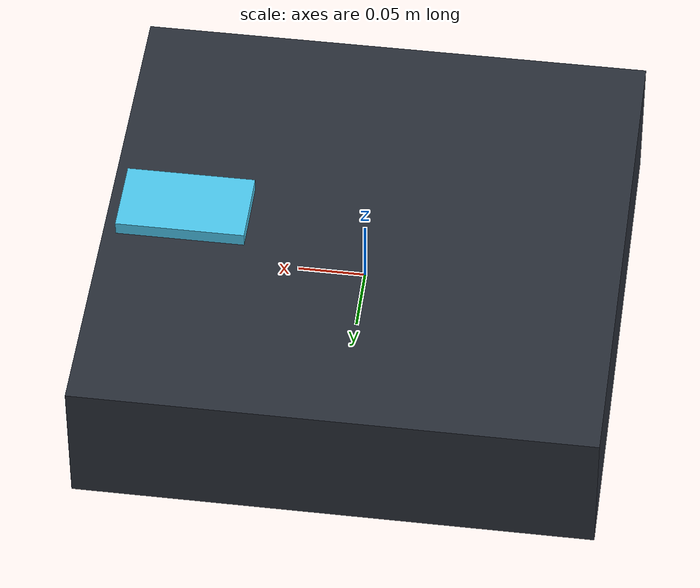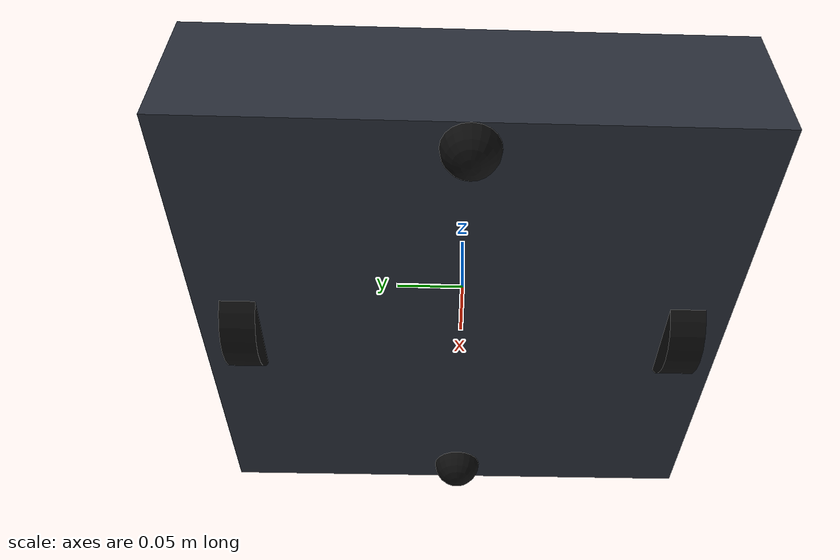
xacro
<?xml version="1.0"?>
<robot xmlns:xacro="http://www.ros.org/wiki/xacro" name="visbot">
  <xacro:arg name="wheel_d_in" default="3.25"/>
  <xacro:arg name="track_in" default="12.5"/>
  <xacro:arg name="length_in" default="15"/>
  <xacro:arg name="width_in" default="15"/>
  <xacro:arg name="mass_kg" default="7.5"/>
  <!-- 450 rpm on 3.25 in wheels = 1.95 m/s; 0.12 s motor time constant -->
  <xacro:arg name="max_v" default="1.95"/>
  <xacro:arg name="max_w" default="12.3"/>
  <xacro:arg name="max_a" default="16"/>
  <xacro:arg name="mesh" default=""/>
  <xacro:property name="inch" value="0.0254"/>
  <xacro:property name="wheel_r" value="${$(arg wheel_d_in) * inch / 2}"/>
  <xacro:property name="wheel_w" value="${1.0 * inch}"/>
  <xacro:property name="track" value="${$(arg track_in) * inch}"/>
  <xacro:property name="body_l" value="${$(arg length_in) * inch}"/>
  <xacro:property name="body_w" value="${$(arg width_in) * inch}"/>
  <xacro:property name="body_h" value="${4 * inch}"/>
  <xacro:property name="clearance" value="${0.75 * inch}"/>
  <xacro:property name="mass" value="$(arg mass_kg)"/>
  <xacro:property name="mesh" value="$(arg mesh)"/>
  <xacro:arg name="imu_hz" default="200"/>
  <xacro:arg name="joint_hz" default="100"/>

  <material name="chassis"><color rgba="0.16 0.18 0.22 1"/></material>
  <material name="wheel"><color rgba="0.05 0.05 0.05 1"/></material>
  <material name="accent"><color rgba="0.30 0.79 0.94 1"/></material>

  <!-- ===== base ===== -->
  <link name="base_link">
    <inertial>
      <mass value="${mass}"/>
      <origin xyz="0 0 0"/>
      <inertia ixx="${mass/12*(body_w*body_w+body_h*body_h)}" iyy="${mass/12*(body_l*body_l+body_h*body_h)}"
               izz="${mass/12*(body_l*body_l+body_w*body_w)}" ixy="0" ixz="0" iyz="0"/>
    </inertial>
    <xacro:if value="${mesh == ''}">
      <visual>
        <geometry><box size="${body_l} ${body_w} ${body_h}"/></geometry>
        <material name="chassis"/>
      </visual>
      <!-- heading marker -->
      <visual>
        <origin xyz="${body_l*0.35} 0 ${body_h/2+0.005}"/>
        <geometry><box size="${body_l*0.25} ${body_w*0.15} 0.01"/></geometry>
        <material name="accent"/>
      </visual>
    </xacro:if>
    <xacro:unless value="${mesh == ''}">
      <!-- the team's CAD, written by robot_studio in its robot frame (x right, y forward, z up, origin on
           the floor under the drive): turn it to base_link's x-forward and drop it to the floor -->
      <visual>
        <origin xyz="0 0 ${-(body_h/2 + clearance)}" rpy="0 0 ${-pi/2}"/>
        <geometry><mesh filename="${mesh}"/></geometry>
      </visual>
    </xacro:unless>
    <collision>
      <geometry><box size="${body_l} ${body_w} ${body_h}"/></geometry>
    </collision>
  </link>

  <!-- ===== drive wheels ===== -->
  <xacro:macro name="wheel" params="side y">
    <link name="${side}_wheel">
      <inertial>
        <mass value="0.15"/>
        <inertia ixx="${0.15/12*(3*wheel_r*wheel_r+wheel_w*wheel_w)}" iyy="${0.15/2*wheel_r*wheel_r}"
                 izz="${0.15/12*(3*wheel_r*wheel_r+wheel_w*wheel_w)}" ixy="0" ixz="0" iyz="0"/>
      </inertial>
      <visual>
        <origin rpy="${pi/2} 0 0"/>
        <geometry><cylinder radius="${wheel_r}" length="${wheel_w}"/></geometry>
        <material name="wheel"/>
      </visual>
      <collision>
        <origin rpy="${pi/2} 0 0"/>
        <geometry><cylinder radius="${wheel_r}" length="${wheel_w}"/></geometry>
      </collision>
    </link>
    <joint name="${side}_wheel_joint" type="continuous">
      <parent link="base_link"/>
      <child link="${side}_wheel"/>
      <origin xyz="0 ${y} ${-(body_h/2 + clearance - wheel_r)}"/>
      <axis xyz="0 1 0"/>
      <dynamics damping="0.01" friction="0.0"/>
    </joint>
    <gazebo reference="${side}_wheel">
      <mu1>1.2</mu1><mu2>1.0</mu2>
      <kp>1e6</kp><kd>10</kd>
    </gazebo>
  </xacro:macro>
  <xacro:wheel side="left" y="${track/2}"/>
  <xacro:wheel side="right" y="${-track/2}"/>

  <!-- ===== casters (frictionless spheres) ===== -->
  <xacro:macro name="caster" params="name x">
    <link name="${name}_caster">
      <inertial><mass value="0.05"/><inertia ixx="1e-5" iyy="1e-5" izz="1e-5" ixy="0" ixz="0" iyz="0"/></inertial>
      <visual><geometry><sphere radius="${clearance}"/></geometry><material name="wheel"/></visual>
      <collision><geometry><sphere radius="${clearance}"/></geometry></collision>
    </link>
    <joint name="${name}_caster_joint" type="fixed">
      <parent link="base_link"/><child link="${name}_caster"/>
      <origin xyz="${x} 0 ${-(body_h/2)}"/>
    </joint>
    <gazebo reference="${name}_caster"><mu1>0.0</mu1><mu2>0.0</mu2></gazebo>
  </xacro:macro>
  <xacro:caster name="front" x="${body_l/2 - clearance}"/>
  <xacro:caster name="rear" x="${-(body_l/2 - clearance)}"/>

  <!-- ===== IMU ===== -->
  <link name="imu_link">
    <inertial><mass value="0.01"/><inertia ixx="1e-6" iyy="1e-6" izz="1e-6" ixy="0" ixz="0" iyz="0"/></inertial>
  </link>
  <joint name="imu_joint" type="fixed">
    <parent link="base_link"/><child link="imu_link"/>
    <origin xyz="0 0 ${body_h/2}"/>
  </joint>
  <gazebo reference="imu_link">
    <sensor name="imu" type="imu">
      <always_on>true</always_on>
      <update_rate>$(arg imu_hz)</update_rate>
      <topic>/visbot/imu</topic>
      <gz_frame_id>imu_link</gz_frame_id>
      <imu>
        <angular_velocity>
          <z><noise type="gaussian"><mean>0</mean><stddev>0.002</stddev><bias_mean>0.0002</bias_mean></noise></z>
        </angular_velocity>
      </imu>
    </sensor>
  </gazebo>

  <!-- ===== Gazebo systems ===== -->
  <gazebo>
    <plugin filename="gz-sim-diff-drive-system" name="gz::sim::systems::DiffDrive">
      <left_joint>left_wheel_joint</left_joint>
      <right_joint>right_wheel_joint</right_joint>
      <wheel_separation>${track}</wheel_separation>
      <wheel_radius>${wheel_r}</wheel_radius>
      <topic>/visbot/cmd_vel</topic>
      <!-- the plugin's wheel-integrated odometry; ground truth comes from OdometryPublisher below -->
      <odom_topic>/visbot/wheel_odom</odom_topic>
      <odom_publish_frequency>50</odom_publish_frequency>
      <frame_id>field</frame_id>
      <child_frame_id>base_link</child_frame_id>
      <max_linear_velocity>$(arg max_v)</max_linear_velocity>
      <min_linear_velocity>-$(arg max_v)</min_linear_velocity>
      <max_angular_velocity>$(arg max_w)</max_angular_velocity>
      <min_angular_velocity>-$(arg max_w)</min_angular_velocity>
      <max_linear_acceleration>$(arg max_a)</max_linear_acceleration>
      <min_linear_acceleration>-$(arg max_a)</min_linear_acceleration>
      <max_angular_acceleration>100</max_angular_acceleration>
      <min_angular_acceleration>-100</min_angular_acceleration>
    </plugin>
    <!-- true model pose in the world frame, published as Odometry -->
    <plugin filename="gz-sim-odometry-publisher-system" name="gz::sim::systems::OdometryPublisher">
      <odom_frame>field</odom_frame>
      <robot_base_frame>base_link</robot_base_frame>
      <odom_topic>/visbot/odom</odom_topic>
      <odom_publish_frequency>50</odom_publish_frequency>
      <dimensions>2</dimensions>
    </plugin>
    <plugin filename="gz-sim-joint-state-publisher-system" name="gz::sim::systems::JointStatePublisher">
      <topic>/visbot/joint_states</topic>
      <joint_name>left_wheel_joint</joint_name>
      <joint_name>right_wheel_joint</joint_name>
      <update_rate>$(arg joint_hz)</update_rate>
    </plugin>
  </gazebo>
</robot>
